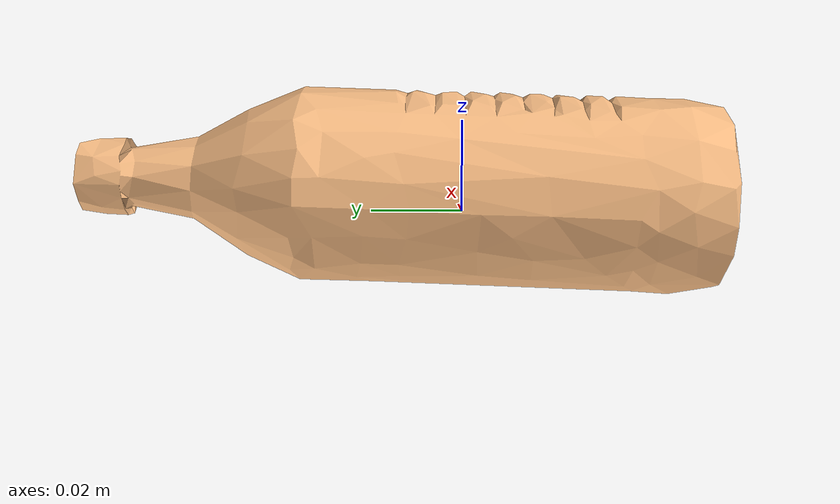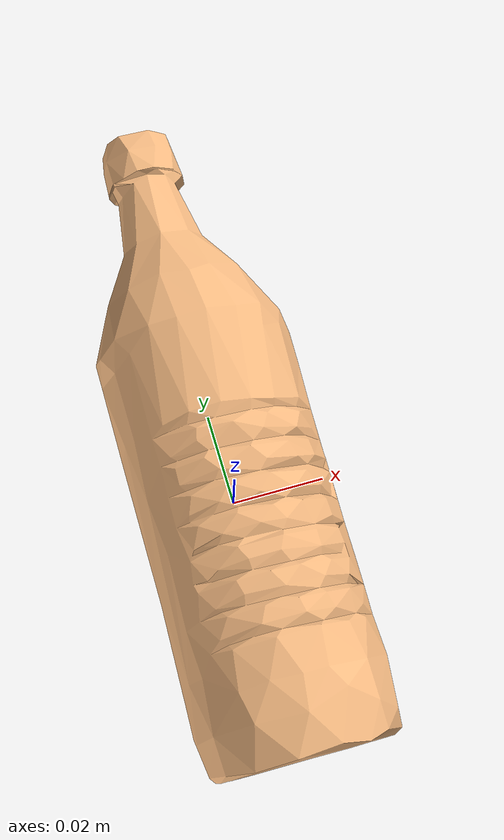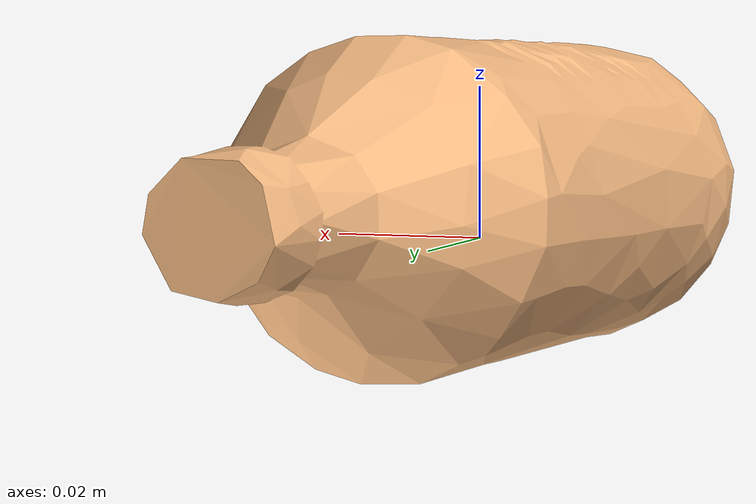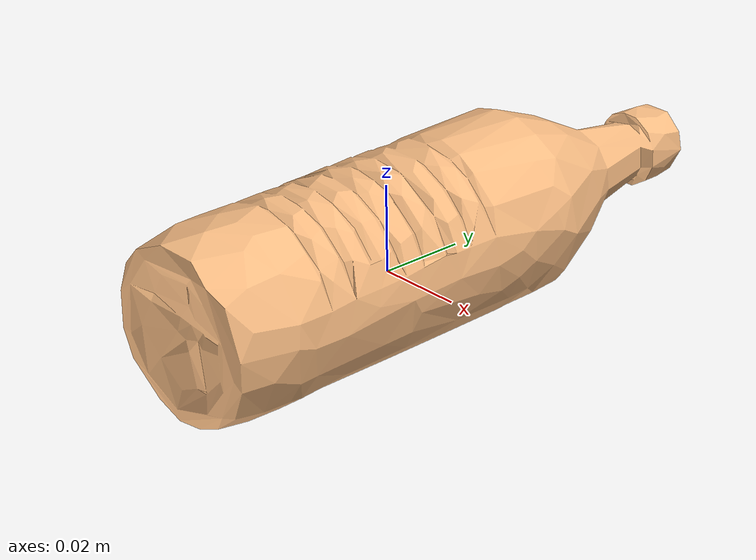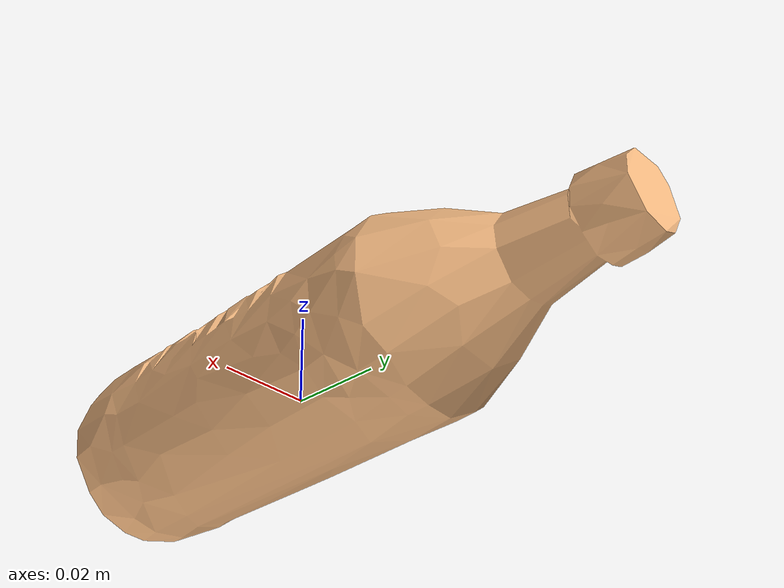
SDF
<sdf version="1.6">
  <model name="bottle8_2">
    <link name="link">
      <pose frame="">-0 0 0.005 0 -0 0</pose>
      <inertial>
        <mass>0.5</mass>
        <inertia>
          <ixx>0.0009075412139999998</ixx>
          <ixy>0</ixy>
          <ixz>0</ixz>
          <iyy>0.0009022493954999999</iyy>
          <iyz>0</iyz>
          <izz>0.00016345818149999999</izz>
        </inertia>
        <pose frame="">4.000000000002081e-06 0.013724999999999998 -0.00021900000000000082 1.57 0 3.14</pose>
      </inertial>
      <self_collide>0</self_collide>
      <kinematic>0</kinematic>
      <gravity>1</gravity>
      <visual name="visual">
        <geometry>
          <mesh>
            <uri>/home/zisu/simulator/siemens_challenge/sim_world/toolbox/bottle8_2.dae</uri>
          </mesh>
        </geometry>
        <pose frame="">0 0 0 0 -0 0</pose>
        <transparency>0</transparency>
        <cast_shadows>0</cast_shadows>
      </visual>
      <collision name="collision">
        <laser_retro>0</laser_retro>
        <max_contacts>10</max_contacts>
        <pose frame="">4.000000000002081e-06 0.013724999999999998 -0.00021900000000000082 1.57 0 3.14</pose>
        <geometry>
          <box>
            <size>0.043566 0.045 0.140556</size>
          </box>
        </geometry>
        <surface>
          <friction>
            <ode>
              <mu>1</mu>
              <mu2>1</mu2>
              <fdir1>0 0 0</fdir1>
              <slip1>0</slip1>
              <slip2>0</slip2>
            </ode>
            <torsional>
              <coefficient>1</coefficient>
              <patch_radius>0</patch_radius>
              <surface_radius>0.05</surface_radius>
              <use_patch_radius>0</use_patch_radius>
              <ode>
                <slip>0</slip>
              </ode>
            </torsional>
          </friction>
          <bounce>
            <restitution_coefficient>0</restitution_coefficient>
            <threshold>1e+06</threshold>
          </bounce>
          <contact>
            <collide_without_contact>0</collide_without_contact>
            <collide_without_contact_bitmask>1</collide_without_contact_bitmask>
            <collide_bitmask>1</collide_bitmask>
            <ode>
              <soft_cfm>0</soft_cfm>
              <soft_erp>0.2</soft_erp>
              <kp>100000</kp>
              <kd>1</kd>
              <max_vel>1</max_vel>
              <min_depth>0.001</min_depth>
            </ode>
            <bullet>
              <split_impulse>1</split_impulse>
              <split_impulse_penetration_threshold>-0.01</split_impulse_penetration_threshold>
              <soft_cfm>0</soft_cfm>
              <soft_erp>0.2</soft_erp>
              <kp>100000</kp>
              <kd>1</kd>
            </bullet>
          </contact>
        </surface>
      </collision>
    </link>
    <static>0</static>
    <allow_auto_disable>1</allow_auto_disable>
  </model>
</sdf>
